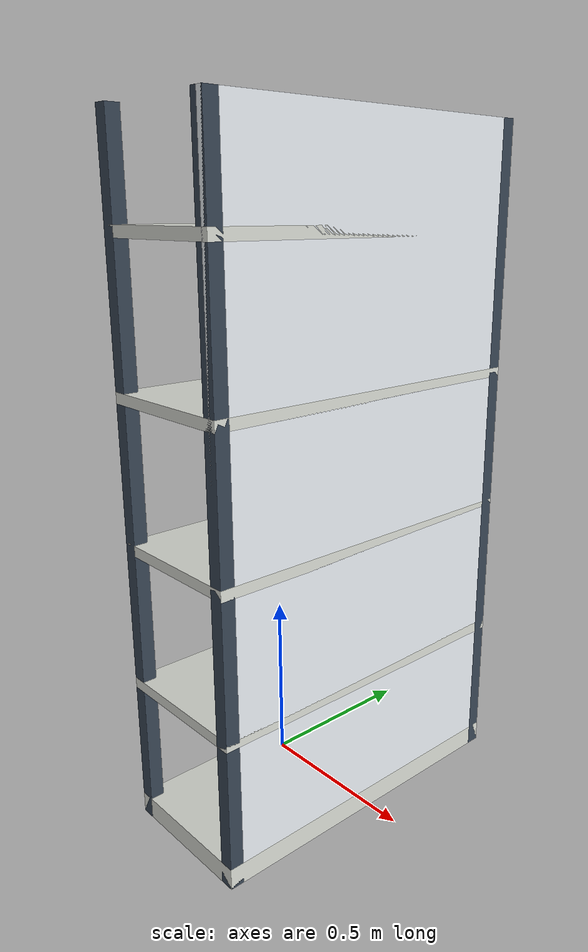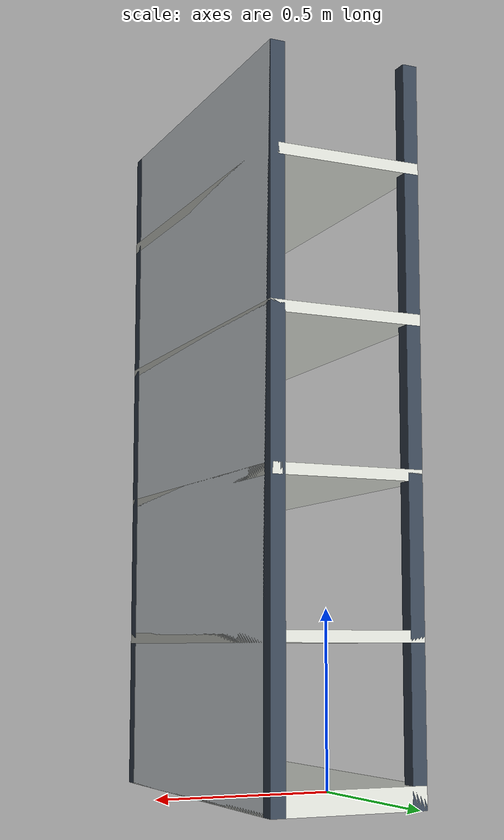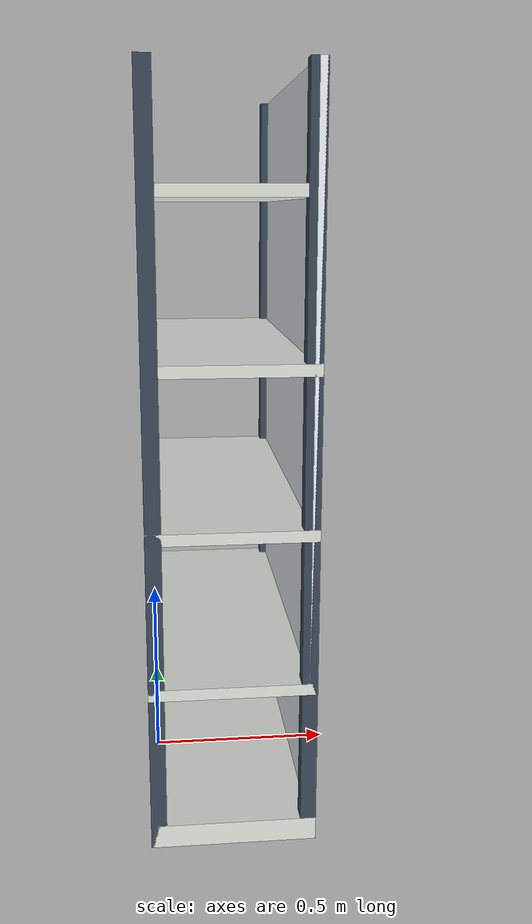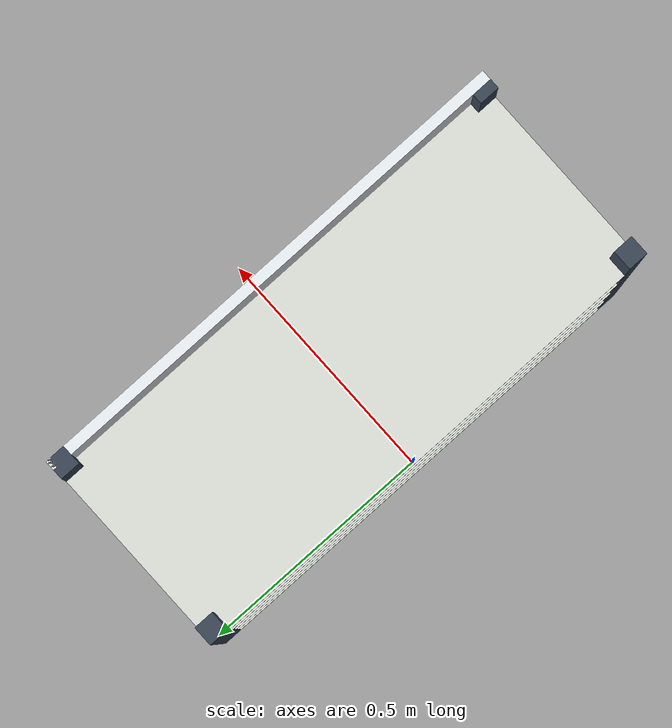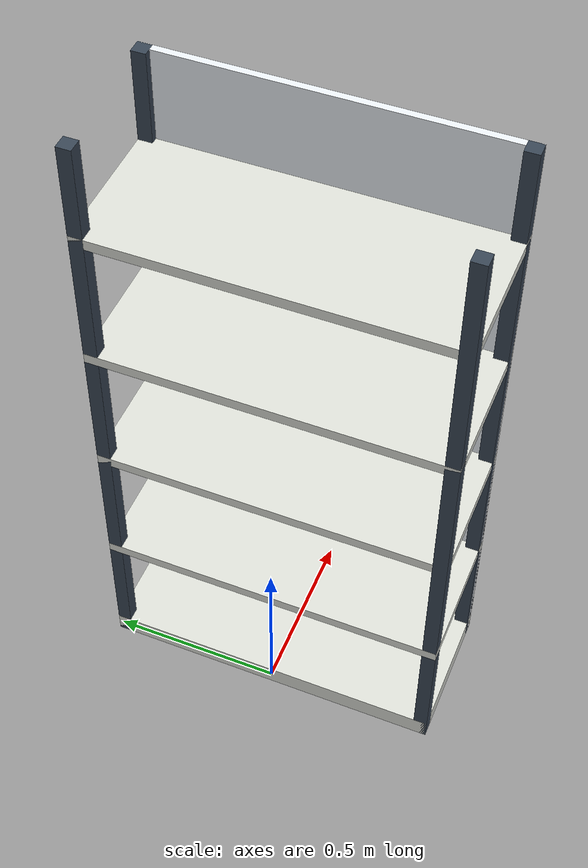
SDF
<?xml version="1.0"?>
<sdf version="1.9">
  <model name="pharmacy_shelf">
    <static>true</static>
    <link name="body">
      <collision name="left_post_collision">
        <pose>0.0 -0.48 0.95 0 0 0</pose>
        <geometry>
          <box>
            <size>0.04 0.04 1.90</size>
          </box>
        </geometry>
      </collision>
      <collision name="right_post_collision">
        <pose>0.0 0.48 0.95 0 0 0</pose>
        <geometry>
          <box>
            <size>0.04 0.04 1.90</size>
          </box>
        </geometry>
      </collision>
      <collision name="rear_left_post_collision">
        <pose>0.38 -0.48 0.95 0 0 0</pose>
        <geometry>
          <box>
            <size>0.04 0.04 1.90</size>
          </box>
        </geometry>
      </collision>
      <collision name="rear_right_post_collision">
        <pose>0.38 0.48 0.95 0 0 0</pose>
        <geometry>
          <box>
            <size>0.04 0.04 1.90</size>
          </box>
        </geometry>
      </collision>
      <collision name="bottom_board_collision">
        <pose>0.19 0.0 0.03 0 0 0</pose>
        <geometry>
          <box>
            <size>0.42 1.00 0.06</size>
          </box>
        </geometry>
      </collision>
      <collision name="shelf_level_1_collision">
        <pose>0.19 0.0 0.42 0 0 0</pose>
        <geometry>
          <box>
            <size>0.42 1.00 0.03</size>
          </box>
        </geometry>
      </collision>
      <collision name="shelf_level_2_collision">
        <pose>0.19 0.0 0.82 0 0 0</pose>
        <geometry>
          <box>
            <size>0.42 1.00 0.03</size>
          </box>
        </geometry>
      </collision>
      <collision name="shelf_level_3_collision">
        <pose>0.19 0.0 1.22 0 0 0</pose>
        <geometry>
          <box>
            <size>0.42 1.00 0.03</size>
          </box>
        </geometry>
      </collision>
      <collision name="shelf_top_collision">
        <pose>0.19 0.0 1.62 0 0 0</pose>
        <geometry>
          <box>
            <size>0.42 1.00 0.03</size>
          </box>
        </geometry>
      </collision>
      <collision name="back_panel_collision">
        <pose>0.39 0.0 0.95 0 0 0</pose>
        <geometry>
          <box>
            <size>0.02 1.00 1.90</size>
          </box>
        </geometry>
      </collision>

      <visual name="left_post_visual">
        <pose>0.0 -0.48 0.95 0 0 0</pose>
        <geometry>
          <box>
            <size>0.04 0.04 1.90</size>
          </box>
        </geometry>
        <material>
          <ambient>0.18 0.22 0.28 1</ambient>
          <diffuse>0.22 0.27 0.33 1</diffuse>
          <specular>0.25 0.25 0.25 1</specular>
        </material>
      </visual>
      <visual name="right_post_visual">
        <pose>0.0 0.48 0.95 0 0 0</pose>
        <geometry>
          <box>
            <size>0.04 0.04 1.90</size>
          </box>
        </geometry>
        <material>
          <ambient>0.18 0.22 0.28 1</ambient>
          <diffuse>0.22 0.27 0.33 1</diffuse>
          <specular>0.25 0.25 0.25 1</specular>
        </material>
      </visual>
      <visual name="rear_left_post_visual">
        <pose>0.38 -0.48 0.95 0 0 0</pose>
        <geometry>
          <box>
            <size>0.04 0.04 1.90</size>
          </box>
        </geometry>
        <material>
          <ambient>0.18 0.22 0.28 1</ambient>
          <diffuse>0.22 0.27 0.33 1</diffuse>
          <specular>0.25 0.25 0.25 1</specular>
        </material>
      </visual>
      <visual name="rear_right_post_visual">
        <pose>0.38 0.48 0.95 0 0 0</pose>
        <geometry>
          <box>
            <size>0.04 0.04 1.90</size>
          </box>
        </geometry>
        <material>
          <ambient>0.18 0.22 0.28 1</ambient>
          <diffuse>0.22 0.27 0.33 1</diffuse>
          <specular>0.25 0.25 0.25 1</specular>
        </material>
      </visual>
      <visual name="bottom_board_visual">
        <pose>0.19 0.0 0.03 0 0 0</pose>
        <geometry>
          <box>
            <size>0.42 1.00 0.06</size>
          </box>
        </geometry>
        <material>
          <ambient>0.78 0.79 0.76 1</ambient>
          <diffuse>0.86 0.87 0.84 1</diffuse>
          <specular>0.10 0.10 0.10 1</specular>
        </material>
      </visual>
      <visual name="shelf_level_1_visual">
        <pose>0.19 0.0 0.42 0 0 0</pose>
        <geometry>
          <box>
            <size>0.42 1.00 0.03</size>
          </box>
        </geometry>
        <material>
          <ambient>0.78 0.79 0.76 1</ambient>
          <diffuse>0.86 0.87 0.84 1</diffuse>
          <specular>0.10 0.10 0.10 1</specular>
        </material>
      </visual>
      <visual name="shelf_level_2_visual">
        <pose>0.19 0.0 0.82 0 0 0</pose>
        <geometry>
          <box>
            <size>0.42 1.00 0.03</size>
          </box>
        </geometry>
        <material>
          <ambient>0.78 0.79 0.76 1</ambient>
          <diffuse>0.86 0.87 0.84 1</diffuse>
          <specular>0.10 0.10 0.10 1</specular>
        </material>
      </visual>
      <visual name="shelf_level_3_visual">
        <pose>0.19 0.0 1.22 0 0 0</pose>
        <geometry>
          <box>
            <size>0.42 1.00 0.03</size>
          </box>
        </geometry>
        <material>
          <ambient>0.78 0.79 0.76 1</ambient>
          <diffuse>0.86 0.87 0.84 1</diffuse>
          <specular>0.10 0.10 0.10 1</specular>
        </material>
      </visual>
      <visual name="shelf_top_visual">
        <pose>0.19 0.0 1.62 0 0 0</pose>
        <geometry>
          <box>
            <size>0.42 1.00 0.03</size>
          </box>
        </geometry>
        <material>
          <ambient>0.78 0.79 0.76 1</ambient>
          <diffuse>0.86 0.87 0.84 1</diffuse>
          <specular>0.10 0.10 0.10 1</specular>
        </material>
      </visual>
      <visual name="back_panel_visual">
        <pose>0.39 0.0 0.95 0 0 0</pose>
        <geometry>
          <box>
            <size>0.02 1.00 1.90</size>
          </box>
        </geometry>
        <material>
          <ambient>0.82 0.84 0.88 1</ambient>
          <diffuse>0.92 0.94 0.96 1</diffuse>
          <specular>0.08 0.08 0.08 1</specular>
        </material>
      </visual>
    </link>
  </model>
</sdf>
